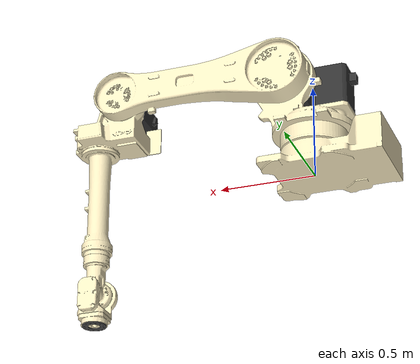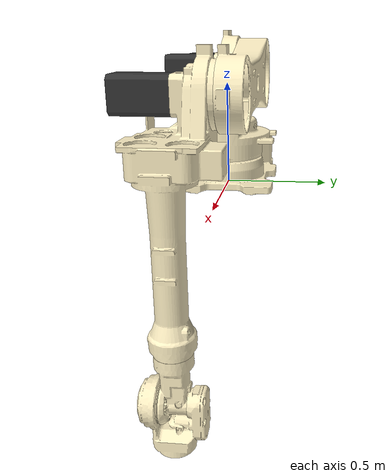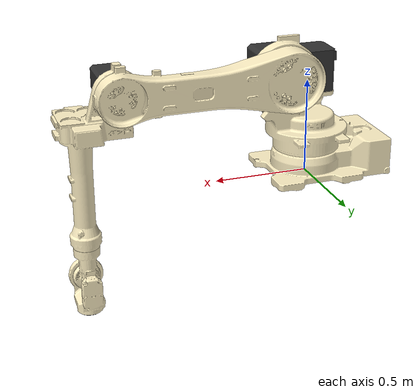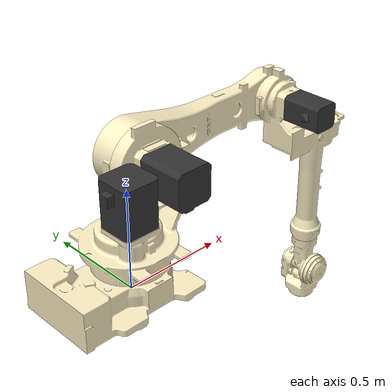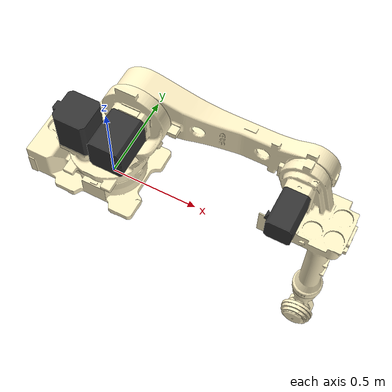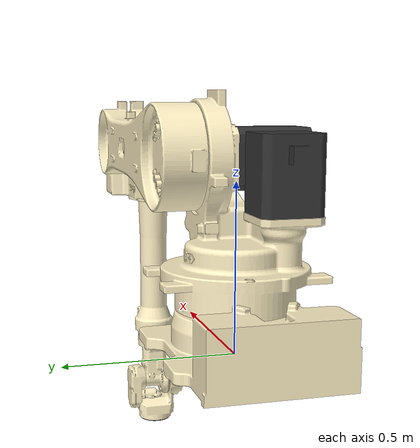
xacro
<?xml version="1.0"?>
<robot name="hdr_robot" xmlns:xacro="http://ros.org/wiki/xacro">
  <material name="ivory">
    <color rgba="1.0 0.945 0.773 1.0" />
  </material>
  <material name="black">
    <color rgba="0.2 0.2 0.2 1.0"/>
  </material>
  <material name="gray">
    <color rgba="0.3 0.3 0.3 1.0"/>
  </material>
  <xacro:property name="mesh_scale" value="0.001" />
  <link name="base_link">
    <visual>
      <geometry>
        <mesh filename="file://$(find hdr_description)/meshes/robots/hdr35_20/visual/base_body.stl" scale="${mesh_scale} ${mesh_scale} ${mesh_scale}"/>
      </geometry>
      <material name="ivory"/>
    </visual>
    <collision>
      <geometry>
        <mesh filename="file://$(find hdr_description)/meshes/robots/hdr35_20/collision/base_body.stl" scale="${mesh_scale} ${mesh_scale} ${mesh_scale}"/>
      </geometry>
    </collision>
    <inertial>
      <mass value="118.90"/>
      <origin xyz="0.0 0 0.1" rpy="0 0 0"/>
      <inertia ixx="2.7198" ixy="0.0" ixz="0.0" iyy="4.4954" iyz="0.0" izz="6.3413"/>
    </inertial>
  </link>
  <link name="lower_frame_link">
    <visual>
      <geometry>
        <mesh filename="file://$(find hdr_description)/meshes/robots/hdr35_20/visual/lower_frame.stl" scale="${mesh_scale} ${mesh_scale} ${mesh_scale}"/>
      </geometry>
      <material name="ivory"/>
    </visual>
    <collision>
      <geometry>
        <mesh filename="file://$(find hdr_description)/meshes/robots/hdr35_20/collision/lower_frame.stl" scale="${mesh_scale} ${mesh_scale} ${mesh_scale}"/>
      </geometry>
    </collision>
    <inertial>
      <mass value="147.17"/>
      <origin xyz="0.0 0 0.2" rpy="0 0 0"/>
      <inertia ixx="7.5400" ixy="0.0" ixz="0.0" iyy="8.1593" iyz="0.0" izz="6.2706"/>
    </inertial>
  </link>
  <link name="upper_frame_link">
    <visual>
      <geometry>
        <mesh filename="file://$(find hdr_description)/meshes/robots/hdr35_20/visual/upper_frame.stl" scale="${mesh_scale} ${mesh_scale} ${mesh_scale}"/>
      </geometry>
      <material name="ivory"/>
    </visual>
    <collision>
      <geometry>
        <mesh filename="file://$(find hdr_description)/meshes/robots/hdr35_20/collision/upper_frame.stl" scale="${mesh_scale} ${mesh_scale} ${mesh_scale}"/>
      </geometry>
    </collision>
    <inertial>
      <mass value="68.63"/>
      <origin xyz="0.0 0.0 -0.04" rpy="0 0 0"/>
      <inertia ixx="7.9244" ixy="0.0" ixz="0.0" iyy="0.7434" iyz="0.0" izz="8.2104"/>
    </inertial>
  </link>
  <link name="arm_link">
    <visual>
      <geometry>
        <mesh filename="file://$(find hdr_description)/meshes/robots/hdr35_20/visual/arm.stl" scale="${mesh_scale} ${mesh_scale} ${mesh_scale}"/>
      </geometry>
      <material name="ivory"/>
    </visual>
    <collision>
      <geometry>
        <mesh filename="file://$(find hdr_description)/meshes/robots/hdr35_20/collision/arm.stl" scale="${mesh_scale} ${mesh_scale} ${mesh_scale}"/>
      </geometry>
    </collision>
    <inertial>
      <mass value="73.93"/>
      <origin xyz="0 0 0" rpy="0 0 0"/>
      <inertia ixx="1.7700" ixy="0.0" ixz="0.0" iyy="6.6691" iyz="0.0" izz="7.1773"/>
    </inertial>
  </link>
  <link name="wrist_body_link">
    <visual>
      <geometry>
        <mesh filename="file://$(find hdr_description)/meshes/robots/hdr35_20/visual/wrist_body.stl" scale="${mesh_scale} ${mesh_scale} ${mesh_scale}"/>
      </geometry>
      <material name="ivory"/>
    </visual>
    <collision>
      <geometry>
        <mesh filename="file://$(find hdr_description)/meshes/robots/hdr35_20/collision/wrist_body.stl" scale="${mesh_scale} ${mesh_scale} ${mesh_scale}"/>
      </geometry>
    </collision>
    <inertial>
      <mass value="20.15"/>
      <origin xyz="0 0 0" rpy="0 0 0"/>
      <inertia ixx="0.0706" ixy="0.0" ixz="0.0" iyy="0.1553" iyz="0.0" izz="0.1601"/>
    </inertial>
  </link>
  <link name="wrist_holder_link">
    <visual>
      <geometry>
        <mesh filename="file://$(find hdr_description)/meshes/robots/hdr35_20/visual/wrist_holder.stl" scale="${mesh_scale} ${mesh_scale} ${mesh_scale}"/>
      </geometry>
      <material name="ivory"/>
    </visual>
    <collision>
      <geometry>
        <mesh filename="file://$(find hdr_description)/meshes/robots/hdr35_20/collision/wrist_holder.stl" scale="${mesh_scale} ${mesh_scale} ${mesh_scale}"/>
      </geometry>
    </collision>
    <inertial>
      <mass value="11.26"/>
      <origin xyz="0 0 0" rpy="0 0 0"/>
      <inertia ixx="0.0800" ixy="0.0" ixz="0.0" iyy="0.1130" iyz="0.0" izz="0.0938"/>
    </inertial>
  </link>
  <link name="flange_link">
    <visual>
      <origin xyz="0 0 0" rpy="0 0 0"/>
      <geometry>
        <mesh filename="file://$(find hdr_description)/meshes/robots/hdr35_20/visual/flange.stl" scale="${mesh_scale} ${mesh_scale} ${mesh_scale}"/>
      </geometry>
      <material name="gray"/>
    </visual>
    <collision>
      <origin xyz="0 0 0" rpy="0 0 0"/>
      <geometry>
        <mesh filename="file://$(find hdr_description)/meshes/robots/hdr35_20/collision/flange.stl" scale="${mesh_scale} ${mesh_scale} ${mesh_scale}"/>
      </geometry>
    </collision>
    <inertial>
      <mass value="0.79"/>
      <origin xyz="0.005 0 0" rpy="0 0 0"/>
      <inertia ixx="0.0022" ixy="0.0" ixz="0.0" iyy="0.0011" iyz="0.0" izz="0.0011"/>
    </inertial>
  </link>
  <link name="motor_s">
    <visual>
      <geometry>
        <mesh filename="file://$(find hdr_description)/meshes/robots/hdr35_20/visual/motor_s.stl" scale="${mesh_scale} ${mesh_scale} ${mesh_scale}"/>
      </geometry>
      <material name="black"/>
    </visual>
    <collision>
      <geometry>
        <mesh filename="file://$(find hdr_description)/meshes/robots/hdr35_20/collision/motor_s.stl" scale="${mesh_scale} ${mesh_scale} ${mesh_scale}"/>
      </geometry>
    </collision>
    <inertial>
      <mass value="0"/>
      <origin xyz="0 0 0" rpy="0 0 0"/>
      <inertia ixx="1e-6" ixy="0" ixz="0" iyy="1e-6" iyz="0" izz="1e-6"/>
    </inertial>
  </link>
  <link name="motor_h">
    <visual>
      <geometry>
        <mesh filename="file://$(find hdr_description)/meshes/robots/hdr35_20/visual/motor_h.stl" scale="${mesh_scale} ${mesh_scale} ${mesh_scale}"/>
      </geometry>
      <material name="black"/>
    </visual>
    <collision>
      <geometry>
        <mesh filename="file://$(find hdr_description)/meshes/robots/hdr35_20/collision/motor_h.stl" scale="${mesh_scale} ${mesh_scale} ${mesh_scale}"/>
      </geometry>
    </collision>
    <inertial>
      <mass value="0"/>
      <origin xyz="0 0 0" rpy="0 0 0"/>
      <inertia ixx="1e-6" ixy="0" ixz="0" iyy="1e-6" iyz="0" izz="1e-6"/>
    </inertial>
  </link>
  <link name="motor_v">
    <visual>
      <geometry>
        <mesh filename="file://$(find hdr_description)/meshes/robots/hdr35_20/visual/motor_v.stl" scale="${mesh_scale} ${mesh_scale} ${mesh_scale}"/>
      </geometry>
      <material name="black"/>
    </visual>
    <collision>
      <geometry>
        <mesh filename="file://$(find hdr_description)/meshes/robots/hdr35_20/collision/motor_v.stl" scale="${mesh_scale} ${mesh_scale} ${mesh_scale}"/>
      </geometry>
    </collision>
    <inertial>
      <mass value="0"/>
      <origin xyz="0 0 0" rpy="0 0 0"/>
      <inertia ixx="1e-6" ixy="0" ixz="0" iyy="1e-6" iyz="0" izz="1e-6"/>
    </inertial>
  </link>

  <joint name="j1" type="revolute">
    <parent link="base_link"/>
    <child link="lower_frame_link"/>
    <origin xyz="0 0 0" rpy="0 0 0"/>
    <axis xyz="0 0 1"/>
    <limit lower="-3.141" upper="3.141" effort="3078.7" velocity="3.141"/>
  </joint>
  <joint name="j2" type="revolute">
    <parent link="lower_frame_link"/>
    <child link="upper_frame_link"/>
    <origin xyz="0.15 0.08 0.56" rpy="0 1.5708 -1.5708"/>
    <axis xyz="0 0 1"/>
    <limit lower="-0.785" upper="3.141" effort="3169.7" velocity="3.141"/>
  </joint>
  <joint name="j3" type="revolute">
    <parent link="upper_frame_link"/>
    <child link="arm_link"/>
    <origin xyz="0 0.87 -0.04" rpy="0 0 0"/>
    <axis xyz="0 0 1"/>
    <limit lower="-1.396" upper="3.141" effort="1507.0" velocity="3.316"/>
  </joint>
  <joint name="j4" type="revolute">
    <parent link="arm_link"/>
    <child link="wrist_body_link"/>
    <origin xyz="0.828 0.175 0.1415" rpy="0 0 0"/>
    <axis xyz="1 0 0"/>
    <limit lower="-6.283" upper="6.283" effort="259.0" velocity="5.410"/>
  </joint>
  <joint name="j5" type="revolute">
    <parent link="wrist_body_link"/>
    <child link="wrist_holder_link"/>
    <origin xyz="0.195 0.0 0.04" rpy="0 0 0"/>
    <axis xyz="0 0 1"/>
    <limit lower="-2.181" upper="2.181" effort="240.4" velocity="5.410"/>
  </joint>
  <joint name="j6" type="revolute">
    <parent link="wrist_holder_link"/>
    <child link="flange_link"/>
    <origin xyz="0.175 0 -0.0375" rpy="-1.5708 0 0"/>
    <axis xyz="1 0 0"/>
    <limit lower="-6.283" upper="6.283" effort="215.6" velocity="7.330"/>
  </joint>

  <joint name="joint_motor_s" type="fixed">
    <parent link="lower_frame_link"/>
    <child link="motor_s"/>
    <origin xyz="0 0 0" rpy="0 0 0"/>
    <axis xyz="-1 0 0"/>
  </joint>
  <joint name="joint_motor_h" type="fixed">
    <parent link="lower_frame_link"/>
    <child link="motor_h"/>
    <origin xyz="0 0 0" rpy="0 0 0"/>
    <axis xyz="1 0 0"/>
  </joint>
  <joint name="joint_motor_v" type="fixed">
    <parent link="arm_link"/>
    <child link="motor_v"/>
    <origin xyz="-0.15 -1.425 0.14" rpy="-1.5708 0 0"/>
    <axis xyz="1 0 0"/>
  </joint>

  <link name="base"/>
  <joint name="base_link-base" type="fixed">
    <origin xyz="0 0 0" rpy="0 0 0"/>
    <parent link="base_link"/>
    <child link="base"/>
  </joint>
  <link name="flange"/>
  <joint name="flange_link-flange" type="fixed">
    <origin xyz="0 0 0" rpy="0 0 0"/>
    <parent link="flange_link"/>
    <child link="flange"/>
  </joint>
  <link name="tool0"/>
  <joint name="flange-tool0" type="fixed">
    <origin xyz="0 0 0" rpy="0 1.5708 0"/>
    <parent link="flange"/>
    <child link="tool0"/>
  </joint>

  <link name="world"/>
  <joint name="world_joint" type="fixed">
    <parent link="world"/>
    <child link="base_link"/>
    <origin xyz="0 0 0" rpy="0 0 0"/>
  </joint>
</robot>
